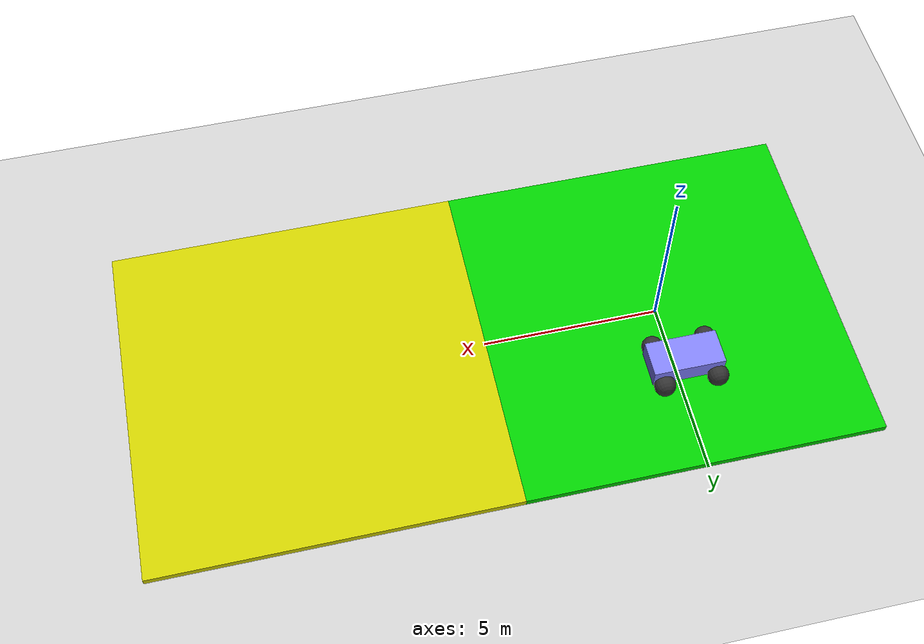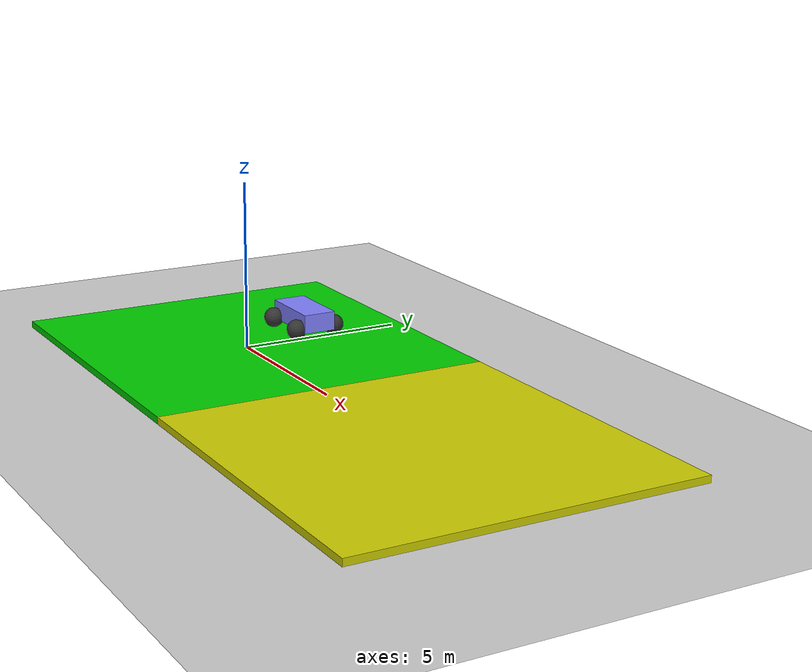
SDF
<?xml version="1.0" ?>
<sdf version="1.6">
  <world name="breadcrumbs">

    <physics name="1ms" type="ode">
      <max_step_size>0.001</max_step_size>
      <real_time_factor>0</real_time_factor>
    </physics>
    <plugin
      filename="gz-sim-physics-system"
      name="gz::sim::systems::Physics">
    </plugin>
    <plugin
      filename="gz-sim-user-commands-system"
      name="gz::sim::systems::UserCommands">
    </plugin>
    <plugin
      filename="gz-sim-scene-broadcaster-system"
      name="gz::sim::systems::SceneBroadcaster">
    </plugin>

    <light type="directional" name="sun">
      <cast_shadows>true</cast_shadows>
      <pose>0 0 10 0 0 0</pose>
      <diffuse>1 1 1 1</diffuse>
      <specular>0.5 0.5 0.5 1</specular>
      <attenuation>
        <range>1000</range>
        <constant>0.9</constant>
        <linear>0.01</linear>
        <quadratic>0.001</quadratic>
      </attenuation>
      <direction>-0.5 0.1 -0.9</direction>
    </light>

    <model name="ground_plane">
      <static>true</static>
      <link name="link">
        <collision name="collision">
          <geometry>
            <plane>
              <normal>0 0 1</normal>
              <size>100 100</size>
            </plane>
          </geometry>
        </collision>
        <visual name="visual">
          <geometry>
            <plane>
              <normal>0 0 1</normal>
              <size>100 100</size>
            </plane>
          </geometry>
          <material>
            <ambient>0.8 0.8 0.8 1</ambient>
            <diffuse>0.8 0.8 0.8 1</diffuse>
            <specular>0.8 0.8 0.8 1</specular>
          </material>
        </visual>
      </link>
    </model>

    <model name="tile_1">
      <pose>0 0 0.1 0 0 0</pose>
      <static>true</static>
      <link name="link">
        <collision name="collision">
          <geometry>
            <box>
              <size>10 10 0.2</size>
            </box>
          </geometry>
        </collision>
        <visual name="visual">
          <geometry>
            <box>
              <size>10 10 0.2</size>
            </box>
          </geometry>
          <material>
            <ambient>0.8 0.8 0.8 1</ambient>
            <diffuse>0.0 0.8 0.0 1</diffuse>
            <specular>0.8 0.8 0.8 1</specular>
          </material>
        </visual>
      </link>
    </model>
    <model name="tile_2">
      <pose>10 0 0.1 0 0 0</pose>
      <static>true</static>
      <link name="link">
        <collision name="collision">
          <geometry>
            <box>
              <size>10 10 0.2</size>
            </box>
          </geometry>
        </collision>
        <visual name="visual">
          <geometry>
            <box>
              <size>10 10 0.2</size>
            </box>
          </geometry>
          <material>
            <ambient>0.8 0.8 0.8 1</ambient>
            <diffuse>0.8 0.8 0.0 1</diffuse>
            <specular>0.8 0.8 0.8 1</specular>
          </material>
        </visual>
      </link>
    </model>
    <model name='vehicle_blue'>
      <pose>0 2 0.525 0 -0 0</pose>

      <link name='chassis'>
        <pose>-0.151427 -0 0.175 0 -0 0</pose>
        <inertial>
          <mass>1.14395</mass>
          <inertia>
            <ixx>0.126164</ixx>
            <ixy>0</ixy>
            <ixz>0</ixz>
            <iyy>0.416519</iyy>
            <iyz>0</iyz>
            <izz>0.481014</izz>
          </inertia>
        </inertial>
        <visual name='visual'>
          <geometry>
            <box>
              <size>2.01142 1 0.568726</size>
            </box>
          </geometry>
          <material>
            <ambient>0.5 0.5 1.0 1</ambient>
            <diffuse>0.5 0.5 1.0 1</diffuse>
            <specular>0.0 0.0 1.0 1</specular>
          </material>
        </visual>
        <collision name='collision'>
          <geometry>
            <box>
              <size>2.01142 1 0.568726</size>
            </box>
          </geometry>
        </collision>
      </link>

      <link name='front_left_wheel'>
        <pose>0.554283 0.625029 -0.025 -1.5707 0 0</pose>
        <inertial>
          <mass>2</mass>
          <inertia>
            <ixx>0.145833</ixx>
            <ixy>0</ixy>
            <ixz>0</ixz>
            <iyy>0.145833</iyy>
            <iyz>0</iyz>
            <izz>0.125</izz>
          </inertia>
        </inertial>
        <visual name='visual'>
          <geometry>
            <sphere>
              <radius>0.3</radius>
            </sphere>
          </geometry>
          <material>
            <ambient>0.2 0.2 0.2 1</ambient>
            <diffuse>0.2 0.2 0.2 1</diffuse>
            <specular>0.2 0.2 0.2 1</specular>
          </material>
        </visual>
        <collision name='collision'>
          <geometry>
            <sphere>
              <radius>0.3</radius>
            </sphere>
          </geometry>
          <surface>
            <friction>
              <ode>
                <mu>1</mu>
                <mu2>1</mu2>
                <slip1>0.035</slip1>
                <slip2>0</slip2>
                <fdir1>0 0 1</fdir1>
              </ode>
              <bullet>
                <friction>1</friction>
                <friction2>1</friction2>
                <rolling_friction>0.1</rolling_friction>
              </bullet>
            </friction>
          </surface>
        </collision>
      </link>

      <link name='rear_left_wheel'>
        <pose>-0.957138 0.625029 -0.025 -1.5707 0 0</pose>
        <inertial>
          <mass>2</mass>
          <inertia>
            <ixx>0.145833</ixx>
            <ixy>0</ixy>
            <ixz>0</ixz>
            <iyy>0.145833</iyy>
            <iyz>0</iyz>
            <izz>0.125</izz>
          </inertia>
        </inertial>
        <visual name='visual'>
          <geometry>
            <sphere>
              <radius>0.3</radius>
            </sphere>
          </geometry>
          <material>
            <ambient>0.2 0.2 0.2 1</ambient>
            <diffuse>0.2 0.2 0.2 1</diffuse>
            <specular>0.2 0.2 0.2 1</specular>
          </material>
        </visual>
        <collision name='collision'>
          <geometry>
            <sphere>
              <radius>0.3</radius>
            </sphere>
          </geometry>
          <surface>
            <friction>
              <ode>
                <mu>1</mu>
                <mu2>1</mu2>
                <slip1>0.035</slip1>
                <slip2>0</slip2>
                <fdir1>0 0 1</fdir1>
              </ode>
              <bullet>
                <friction>1</friction>
                <friction2>1</friction2>
                <rolling_friction>0.1</rolling_friction>
              </bullet>
            </friction>
          </surface>
        </collision>
      </link>

      <link name='front_right_wheel'>
        <pose>0.554282 -0.625029 -0.025 -1.5707 0 0</pose>
        <inertial>
          <mass>2</mass>
          <inertia>
            <ixx>0.145833</ixx>
            <ixy>0</ixy>
            <ixz>0</ixz>
            <iyy>0.145833</iyy>
            <iyz>0</iyz>
            <izz>0.125</izz>
          </inertia>
        </inertial>
        <visual name='visual'>
          <geometry>
            <sphere>
              <radius>0.3</radius>
            </sphere>
          </geometry>
          <material>
            <ambient>0.2 0.2 0.2 1</ambient>
            <diffuse>0.2 0.2 0.2 1</diffuse>
            <specular>0.2 0.2 0.2 1</specular>
          </material>
        </visual>
        <collision name='collision'>
          <geometry>
            <sphere>
              <radius>0.3</radius>
            </sphere>
          </geometry>
          <surface>
            <friction>
              <ode>
                <mu>1</mu>
                <mu2>1</mu2>
                <slip1>0.035</slip1>
                <slip2>0</slip2>
                <fdir1>0 0 1</fdir1>
              </ode>
              <bullet>
                <friction>1</friction>
                <friction2>1</friction2>
                <rolling_friction>0.1</rolling_friction>
              </bullet>
            </friction>
          </surface>
        </collision>
      </link>

      <link name='rear_right_wheel'>
        <pose>-0.957138 -0.625029 -0.025 -1.5707 0 0</pose>
        <inertial>
          <mass>2</mass>
          <inertia>
            <ixx>0.145833</ixx>
            <ixy>0</ixy>
            <ixz>0</ixz>
            <iyy>0.145833</iyy>
            <iyz>0</iyz>
            <izz>0.125</izz>
          </inertia>
        </inertial>
        <visual name='visual'>
          <geometry>
            <sphere>
              <radius>0.3</radius>
            </sphere>
          </geometry>
          <material>
            <ambient>0.2 0.2 0.2 1</ambient>
            <diffuse>0.2 0.2 0.2 1</diffuse>
            <specular>0.2 0.2 0.2 1</specular>
          </material>
        </visual>
        <collision name='collision'>
          <geometry>
            <sphere>
              <radius>0.3</radius>
            </sphere>
          </geometry>
          <surface>
            <friction>
              <ode>
                <mu>1</mu>
                <mu2>1</mu2>
                <slip1>0.035</slip1>
                <slip2>0</slip2>
                <fdir1>0 0 1</fdir1>
              </ode>
              <bullet>
                <friction>1</friction>
                <friction2>1</friction2>
                <rolling_friction>0.1</rolling_friction>
              </bullet>
            </friction>
          </surface>
        </collision>
      </link>

      <joint name='front_left_wheel_joint' type='revolute'>
        <parent>chassis</parent>
        <child>front_left_wheel</child>
        <axis>
          <xyz>0 0 1</xyz>
          <limit>
            <lower>-1.79769e+308</lower>
            <upper>1.79769e+308</upper>
          </limit>
        </axis>
      </joint>

      <joint name='front_right_wheel_joint' type='revolute'>
        <parent>chassis</parent>
        <child>front_right_wheel</child>
        <axis>
          <xyz>0 0 1</xyz>
          <limit>
            <lower>-1.79769e+308</lower>
            <upper>1.79769e+308</upper>
          </limit>
        </axis>
      </joint>

      <joint name='rear_left_wheel_joint' type='revolute'>
        <parent>chassis</parent>
        <child>rear_left_wheel</child>
        <axis>
          <xyz>0 0 1</xyz>
          <limit>
            <lower>-1.79769e+308</lower>
            <upper>1.79769e+308</upper>
          </limit>
        </axis>
      </joint>

      <joint name='rear_right_wheel_joint' type='revolute'>
        <parent>chassis</parent>
        <child>rear_right_wheel</child>
        <axis>
          <xyz>0 0 1</xyz>
          <limit>
            <lower>-1.79769e+308</lower>
            <upper>1.79769e+308</upper>
          </limit>
        </axis>
      </joint>

      <plugin
        filename="gz-sim-diff-drive-system"
        name="gz::sim::systems::DiffDrive">
        <left_joint>front_left_wheel_joint</left_joint>
        <left_joint>rear_left_wheel_joint</left_joint>
        <right_joint>front_right_wheel_joint</right_joint>
        <right_joint>rear_right_wheel_joint</right_joint>
        <wheel_separation>1.25</wheel_separation>
        <wheel_radius>0.3</wheel_radius>
      </plugin>
      <plugin filename="gz-sim-breadcrumbs-system" name="gz::sim::systems::Breadcrumbs">
       <max_deployments>3</max_deployments>
       <breadcrumb>
         <sdf version="1.6">
          <model name="B1">
            <pose>-1.2 0 0 0 0 0</pose>
            <link name='body'>
              <inertial>
                <mass>0.6</mass>
                <inertia>
                  <ixx>0.017</ixx>
                  <ixy>0</ixy>
                  <ixz>0</ixz>
                  <iyy>0.017</iyy>
                  <iyz>0</iyz>
                  <izz>0.009</izz>
                </inertia>
              </inertial>
              <visual name='visual'>
                <geometry>
                  <box>
                    <size>0.3 0.3 0.5</size>
                  </box>
                </geometry>
                <material>
                  <ambient>0.0 1.0 0.0 1</ambient>
                  <diffuse>0.0 1.0 0.0 1</diffuse>
                  <specular>0.5 0.5 0.5 1</specular>
                </material>
              </visual>
              <collision name='collision'>
                <geometry>
                  <box>
                    <size>0.3 0.3 0.5</size>
                  </box>
                </geometry>
              </collision>
            </link>
          </model>
        </sdf>
       </breadcrumb>
      </plugin>
      <plugin filename="gz-sim-breadcrumbs-system" name="gz::sim::systems::Breadcrumbs">
       <max_deployments>3</max_deployments>
       <disable_physics_time>0.5</disable_physics_time>
       <breadcrumb>
         <sdf version="1.6">
          <model name="B2">
            <pose>-2.2 0 2.0 0 0 0</pose>
            <link name='body'>
              <pose>0 0 0.25 0 0 0</pose>
              <inertial>
                <mass>0.6</mass>
                <inertia>
                  <ixx>0.017</ixx>
                  <ixy>0</ixy>
                  <ixz>0</ixz>
                  <iyy>0.017</iyy>
                  <iyz>0</iyz>
                  <izz>0.017</izz>
                </inertia>
              </inertial>
              <visual name='visual'>
                <geometry>
                  <box>
                    <size>0.5 0.5 0.5</size>
                  </box>
                </geometry>
                <material>
                  <ambient>0.0 1.0 1.0 1</ambient>
                  <diffuse>0.0 1.0 1.0 1</diffuse>
                  <specular>0.5 0.5 0.5 1</specular>
                </material>
              </visual>
              <collision name='collision'>
                <geometry>
                  <box>
                    <size>0.5 0.5 0.5</size>
                  </box>
                </geometry>
              </collision>
            </link>
          </model>
        </sdf>
       </breadcrumb>
      </plugin>
      <plugin filename="gz-sim-breadcrumbs-system" name="gz::sim::systems::Breadcrumbs">
        <max_deployments>-1</max_deployments>
        <topic>/fuel_deploy</topic>
        <breadcrumb>
          <sdf version="1.6">
            <model name="B2">
              <pose>-2.2 0 5 0 0 0</pose>
              <include>
                <uri>
                    https://fuel.gazebosim.org/1.0/OpenRobotics/models/Cardboard box
                </uri>
              </include>
            </model>
          </sdf>
        </breadcrumb>
      </plugin>
      <plugin filename="gz-sim-breadcrumbs-system" name="gz::sim::systems::Breadcrumbs">
       <max_deployments>3</max_deployments>
       <performer_volume>
         <geometry>
           <box>
             <size>4 4 2</size>
           </box>
         </geometry>
       </performer_volume>
       <breadcrumb>
         <sdf version="1.6">
          <model name="B1_perf">
            <pose>-1.2 0 0 0 0 0</pose>
            <link name='body'>
              <inertial>
                <mass>0.6</mass>
                <inertia>
                  <ixx>0.017</ixx>
                  <ixy>0</ixy>
                  <ixz>0</ixz>
                  <iyy>0.017</iyy>
                  <iyz>0</iyz>
                  <izz>0.009</izz>
                </inertia>
              </inertial>
              <visual name='visual'>
                <geometry>
                  <box>
                    <size>0.3 0.3 0.5</size>
                  </box>
                </geometry>
                <material>
                  <ambient>0.0 1.0 0.0 1</ambient>
                  <diffuse>0.0 1.0 0.0 1</diffuse>
                  <specular>0.5 0.5 0.5 1</specular>
                </material>
              </visual>
              <collision name='collision'>
                <geometry>
                  <box>
                    <size>0.3 0.3 0.5</size>
                  </box>
                </geometry>
              </collision>
            </link>
          </model>
        </sdf>
       </breadcrumb>
      </plugin>
      <!-- Breadcrumb with large performer volume -->
      <plugin filename="gz-sim-breadcrumbs-system" name="gz::sim::systems::Breadcrumbs">
       <max_deployments>3</max_deployments>
       <performer_volume>
         <geometry>
           <box>
             <size>100 100 2</size>
           </box>
         </geometry>
       </performer_volume>
       <breadcrumb>
         <sdf version="1.6">
          <model name="B1_perf_large_volume">
            <pose>-1.2 0 0 0 0 0</pose>
            <link name='body'>
              <inertial>
                <mass>0.6</mass>
                <inertia>
                  <ixx>0.017</ixx>
                  <ixy>0</ixy>
                  <ixz>0</ixz>
                  <iyy>0.017</iyy>
                  <iyz>0</iyz>
                  <izz>0.009</izz>
                </inertia>
              </inertial>
              <visual name='visual'>
                <geometry>
                  <box>
                    <size>0.3 0.3 0.5</size>
                  </box>
                </geometry>
                <material>
                  <ambient>0.0 1.0 0.0 1</ambient>
                  <diffuse>0.0 1.0 0.0 1</diffuse>
                  <specular>0.5 0.5 0.5 1</specular>
                </material>
              </visual>
              <collision name='collision'>
                <geometry>
                  <box>
                    <size>0.3 0.3 0.5</size>
                  </box>
                </geometry>
              </collision>
            </link>
          </model>
        </sdf>
       </breadcrumb>
      </plugin>

      <!-- Two Breadcrumbs containing a breadcrumb model that is already spawned (B1).-->
      <plugin filename="gz-sim-breadcrumbs-system" name="gz::sim::systems::Breadcrumbs">
       <max_deployments>3</max_deployments>
       <allow_renaming>false</allow_renaming>
       <topic>/no_rename_deploy</topic>
       <breadcrumb>
         <sdf version="1.6">
          <model name="B1">
            <pose>-10 0 0 0 0 0</pose>
            <link name='body'>
              <inertial>
                <mass>0.6</mass>
                <inertia>
                  <ixx>0.017</ixx>
                  <ixy>0</ixy>
                  <ixz>0</ixz>
                  <iyy>0.017</iyy>
                  <iyz>0</iyz>
                  <izz>0.009</izz>
                </inertia>
              </inertial>
            </link>
          </model>
        </sdf>
       </breadcrumb>
      </plugin>
      <plugin filename="gz-sim-breadcrumbs-system" name="gz::sim::systems::Breadcrumbs">
        <max_deployments>3</max_deployments>
        <allow_renaming>true</allow_renaming>
        <topic>/rename_deploy</topic>
        <breadcrumb>
          <sdf version="1.6">
            <model name="B1">
              <pose>-20 0 0 0 0 0</pose>
              <link name='body'>
                <inertial>
                  <mass>0.6</mass>
                  <inertia>
                    <ixx>0.017</ixx>
                    <ixy>0</ixy>
                    <ixz>0</ixz>
                    <iyy>0.017</iyy>
                    <iyz>0</iyz>
                    <izz>0.009</izz>
                  </inertia>
                </inertial>
              </link>
            </model>
          </sdf>
        </breadcrumb>
      </plugin>
    </model>
    <plugin name="gz::sim" filename="dummy">
      <performer name="perf1">
        <ref>vehicle_blue</ref>
        <geometry>
          <box>
            <size>4 4 2</size>
          </box>
        </geometry>
      </performer>
      <level name="level1">
        <pose>0 0 2.5 0 0 0</pose>
        <geometry>
          <box>
            <size>10 10 10</size>
          </box>
        </geometry>
        <buffer>2</buffer>
        <ref>tile_1</ref>
      </level>
    </plugin>
  </world>
</sdf>
